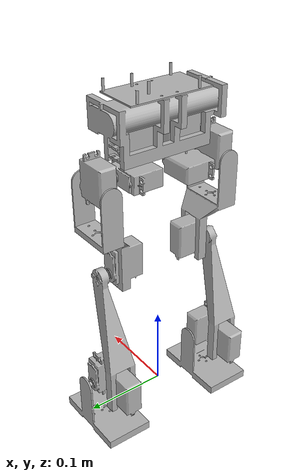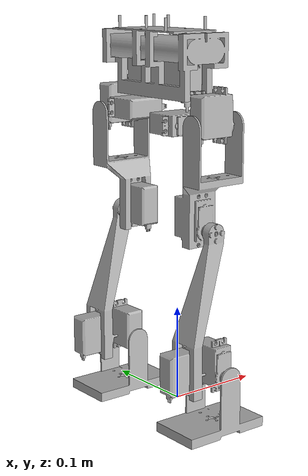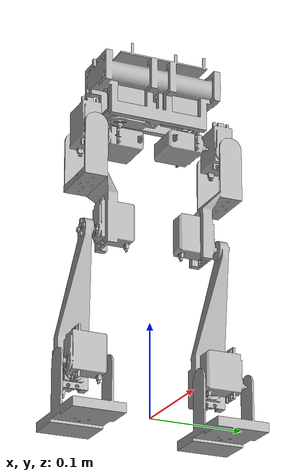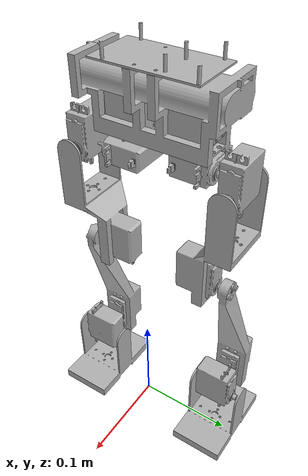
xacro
<?xml version="1.0" ?>
<robot name="URDF" xmlns:xacro="http://www.ros.org/wiki/xacro">

<xacro:include filename="$(find URDF_description)/urdf/materials.xacro" />
<xacro:include filename="$(find URDF_description)/urdf/URDF.trans" />
<xacro:include filename="$(find URDF_description)/urdf/URDF.gazebo" />
<link name="base_link">
  <inertial>
    <origin xyz="-0.011771950657531978 0.009504064144813888 0.36652745045672347" rpy="0 0 0"/>
    <mass value="1.511497628813241"/>
    <inertia ixx="0.002624" iyy="0.000685" izz="0.00252" ixy="-0.0" iyz="-1e-05" ixz="-1e-06"/>
  </inertial>
  <visual>
    <origin xyz="0 0 0" rpy="0 0 0"/>
    <geometry>
      <mesh filename="package://URDF_description/meshes/base_link.stl" scale="0.001 0.001 0.001"/>
    </geometry>
    <material name="silver"/>
  </visual>
  <collision>
    <origin xyz="0 0 0" rpy="0 0 0"/>
    <geometry>
      <mesh filename="package://URDF_description/meshes/base_link.stl" scale="0.001 0.001 0.001"/>
    </geometry>
  </collision>
</link>

<link name="l3_1">
  <inertial>
    <origin xyz="-0.0010554319034483655 -0.010177955025813722 0.0099605153071331" rpy="0 0 0"/>
    <mass value="0.2605710862815951"/>
    <inertia ixx="4.6e-05" iyy="7.1e-05" izz="4.2e-05" ixy="0.0" iyz="-0.0" ixz="1e-06"/>
  </inertial>
  <visual>
    <origin xyz="0.01125 0.056859 -0.300753" rpy="0 0 0"/>
    <geometry>
      <mesh filename="package://URDF_description/meshes/l3_1.stl" scale="0.001 0.001 0.001"/>
    </geometry>
    <material name="silver"/>
  </visual>
  <collision>
    <origin xyz="0.01125 0.056859 -0.300753" rpy="0 0 0"/>
    <geometry>
      <mesh filename="package://URDF_description/meshes/l3_1.stl" scale="0.001 0.001 0.001"/>
    </geometry>
  </collision>
</link>

<link name="r3_1">
  <inertial>
    <origin xyz="-0.0013721079730043672 0.010183257082741967 0.009960041415219167" rpy="0 0 0"/>
    <mass value="0.26058347817133687"/>
    <inertia ixx="4.6e-05" iyy="7.1e-05" izz="4.2e-05" ixy="-0.0" iyz="0.0" ixz="1e-06"/>
  </inertial>
  <visual>
    <origin xyz="0.010932 -0.07264 -0.300746" rpy="0 0 0"/>
    <geometry>
      <mesh filename="package://URDF_description/meshes/r3_1.stl" scale="0.001 0.001 0.001"/>
    </geometry>
    <material name="silver"/>
  </visual>
  <collision>
    <origin xyz="0.010932 -0.07264 -0.300746" rpy="0 0 0"/>
    <geometry>
      <mesh filename="package://URDF_description/meshes/r3_1.stl" scale="0.001 0.001 0.001"/>
    </geometry>
  </collision>
</link>

<link name="l4_1">
  <inertial>
    <origin xyz="-0.025108010465582926 0.020534482343403035 -0.07938553469074466" rpy="0 0 0"/>
    <mass value="0.4795683297989441"/>
    <inertia ixx="0.0005" iyy="0.000461" izz="0.000198" ixy="-3e-06" iyz="0.000142" ixz="6e-06"/>
  </inertial>
  <visual>
    <origin xyz="-0.015754 0.067037 -0.300753" rpy="0 0 0"/>
    <geometry>
      <mesh filename="package://URDF_description/meshes/l4_1.stl" scale="0.001 0.001 0.001"/>
    </geometry>
    <material name="silver"/>
  </visual>
  <collision>
    <origin xyz="-0.015754 0.067037 -0.300753" rpy="0 0 0"/>
    <geometry>
      <mesh filename="package://URDF_description/meshes/l4_1.stl" scale="0.001 0.001 0.001"/>
    </geometry>
  </collision>
</link>

<link name="l5_1">
  <inertial>
    <origin xyz="-0.029491082579912755 0.0039567541577458926 -0.1016008471361324" rpy="0 0 0"/>
    <mass value="0.5723786894338777"/>
    <inertia ixx="0.001158" iyy="0.001268" izz="0.00017" ixy="1e-06" iyz="2e-06" ixz="-0.000323"/>
  </inertial>
  <visual>
    <origin xyz="0.009024 0.071577 -0.195159" rpy="0 0 0"/>
    <geometry>
      <mesh filename="package://URDF_description/meshes/l5_1.stl" scale="0.001 0.001 0.001"/>
    </geometry>
    <material name="silver"/>
  </visual>
  <collision>
    <origin xyz="0.009024 0.071577 -0.195159" rpy="0 0 0"/>
    <geometry>
      <mesh filename="package://URDF_description/meshes/l5_1.stl" scale="0.001 0.001 0.001"/>
    </geometry>
  </collision>
</link>

<link name="l6_1">
  <inertial>
    <origin xyz="0.010148909868078046 0.0014454123231728566 0.009960061611517447" rpy="0 0 0"/>
    <mass value="0.260583085238151"/>
    <inertia ixx="7.1e-05" iyy="4.6e-05" izz="4.2e-05" ixy="0.0" iyz="-1e-06" ixz="0.0"/>
  </inertial>
  <visual>
    <origin xyz="0.018503 0.067568 -0.050454" rpy="0 0 0"/>
    <geometry>
      <mesh filename="package://URDF_description/meshes/l6_1.stl" scale="0.001 0.001 0.001"/>
    </geometry>
    <material name="silver"/>
  </visual>
  <collision>
    <origin xyz="0.018503 0.067568 -0.050454" rpy="0 0 0"/>
    <geometry>
      <mesh filename="package://URDF_description/meshes/l6_1.stl" scale="0.001 0.001 0.001"/>
    </geometry>
  </collision>
</link>

<link name="l7_1">
  <inertial>
    <origin xyz="-0.0038360250370360807 0.0260878632088187 -0.050533848086451186" rpy="0 0 0"/>
    <mass value="0.42535185084301863"/>
    <inertia ixx="0.000201" iyy="0.000374" izz="0.000441" ixy="-0.0" iyz="-0.0" ixz="-5e-06"/>
  </inertial>
  <visual>
    <origin xyz="0.008354 0.094498 -0.050454" rpy="0 0 0"/>
    <geometry>
      <mesh filename="package://URDF_description/meshes/l7_1.stl" scale="0.001 0.001 0.001"/>
    </geometry>
    <material name="silver"/>
  </visual>
  <collision>
    <origin xyz="0.008354 0.094498 -0.050454" rpy="0 0 0"/>
    <geometry>
      <mesh filename="package://URDF_description/meshes/l7_1.stl" scale="0.001 0.001 0.001"/>
    </geometry>
  </collision>
</link>

<link name="r4_1">
  <inertial>
    <origin xyz="-0.025086134509350884 -0.019584458432278365 -0.07938591030825276" rpy="0 0 0"/>
    <mass value="0.4795660415586759"/>
    <inertia ixx="0.0005" iyy="0.000461" izz="0.000198" ixy="3e-06" iyz="-0.000142" ixz="6e-06"/>
  </inertial>
  <visual>
    <origin xyz="-0.016072 -0.082823 -0.300746" rpy="0 0 0"/>
    <geometry>
      <mesh filename="package://URDF_description/meshes/r4_1.stl" scale="0.001 0.001 0.001"/>
    </geometry>
    <material name="silver"/>
  </visual>
  <collision>
    <origin xyz="-0.016072 -0.082823 -0.300746" rpy="0 0 0"/>
    <geometry>
      <mesh filename="package://URDF_description/meshes/r4_1.stl" scale="0.001 0.001 0.001"/>
    </geometry>
  </collision>
</link>

<link name="r5_1">
  <inertial>
    <origin xyz="-0.029491076838213486 -0.003956632577475125 -0.10160079326267875" rpy="0 0 0"/>
    <mass value="0.5723780660401575"/>
    <inertia ixx="0.001158" iyy="0.001268" izz="0.00017" ixy="-1e-06" iyz="-2e-06" ixz="-0.000323"/>
  </inertial>
  <visual>
    <origin xyz="0.008684 -0.088313 -0.195152" rpy="0 0 0"/>
    <geometry>
      <mesh filename="package://URDF_description/meshes/r5_1.stl" scale="0.001 0.001 0.001"/>
    </geometry>
    <material name="silver"/>
  </visual>
  <collision>
    <origin xyz="0.008684 -0.088313 -0.195152" rpy="0 0 0"/>
    <geometry>
      <mesh filename="package://URDF_description/meshes/r5_1.stl" scale="0.001 0.001 0.001"/>
    </geometry>
  </collision>
</link>

<link name="r6_1">
  <inertial>
    <origin xyz="0.010216801636088587 -0.0014452836669609503 0.009959962708194117" rpy="0 0 0"/>
    <mass value="0.26058568857338693"/>
    <inertia ixx="7.1e-05" iyy="4.6e-05" izz="4.2e-05" ixy="-0.0" iyz="1e-06" ixz="0.0"/>
  </inertial>
  <visual>
    <origin xyz="0.018163 -0.084304 -0.050447" rpy="0 0 0"/>
    <geometry>
      <mesh filename="package://URDF_description/meshes/r6_1.stl" scale="0.001 0.001 0.001"/>
    </geometry>
    <material name="silver"/>
  </visual>
  <collision>
    <origin xyz="0.018163 -0.084304 -0.050447" rpy="0 0 0"/>
    <geometry>
      <mesh filename="package://URDF_description/meshes/r6_1.stl" scale="0.001 0.001 0.001"/>
    </geometry>
  </collision>
</link>

<link name="r7_1">
  <inertial>
    <origin xyz="-0.003836011886673152 -0.025999620351597932 -0.050533600876661144" rpy="0 0 0"/>
    <mass value="0.42535393165731183"/>
    <inertia ixx="0.000201" iyy="0.000374" izz="0.000441" ixy="0.0" iyz="0.0" ixz="-5e-06"/>
  </inertial>
  <visual>
    <origin xyz="0.007946 -0.111234 -0.050447" rpy="0 0 0"/>
    <geometry>
      <mesh filename="package://URDF_description/meshes/r7_1.stl" scale="0.001 0.001 0.001"/>
    </geometry>
    <material name="silver"/>
  </visual>
  <collision>
    <origin xyz="0.007946 -0.111234 -0.050447" rpy="0 0 0"/>
    <geometry>
      <mesh filename="package://URDF_description/meshes/r7_1.stl" scale="0.001 0.001 0.001"/>
    </geometry>
  </collision>
</link>

<link name="r1_1">
  <inertial>
    <origin xyz="0.0004996878831269973 0.02734500634448242 0.00896780014474241" rpy="0 0 0"/>
    <mass value="0.260645951134301"/>
    <inertia ixx="7.1e-05" iyy="4.2e-05" izz="4.6e-05" ixy="0.0" iyz="1e-06" ixz="0.0"/>
  </inertial>
  <visual>
    <origin xyz="0.011804 -0.008368 -0.332395" rpy="0 0 0"/>
    <geometry>
      <mesh filename="package://URDF_description/meshes/r1_1.stl" scale="0.001 0.001 0.001"/>
    </geometry>
    <material name="silver"/>
  </visual>
  <collision>
    <origin xyz="0.011804 -0.008368 -0.332395" rpy="0 0 0"/>
    <geometry>
      <mesh filename="package://URDF_description/meshes/r1_1.stl" scale="0.001 0.001 0.001"/>
    </geometry>
  </collision>
</link>

<link name="l1_1">
  <inertial>
    <origin xyz="0.0001816438125570169 -0.0273436447861984 0.008967326406254417" rpy="0 0 0"/>
    <mass value="0.260658112795213"/>
    <inertia ixx="7.1e-05" iyy="4.2e-05" izz="4.6e-05" ixy="-0.0" iyz="-1e-06" ixz="0.0"/>
  </inertial>
  <visual>
    <origin xyz="0.011804 -0.008368 -0.332395" rpy="0 0 0"/>
    <geometry>
      <mesh filename="package://URDF_description/meshes/l1_1.stl" scale="0.001 0.001 0.001"/>
    </geometry>
    <material name="silver"/>
  </visual>
  <collision>
    <origin xyz="0.011804 -0.008368 -0.332395" rpy="0 0 0"/>
    <geometry>
      <mesh filename="package://URDF_description/meshes/l1_1.stl" scale="0.001 0.001 0.001"/>
    </geometry>
  </collision>
</link>

<link name="l2_1">
  <inertial>
    <origin xyz="-0.009584482225170093 0.002892011357412988 -0.010242130854528853" rpy="0 0 0"/>
    <mass value="0.2606766909017712"/>
    <inertia ixx="4.2e-05" iyy="4.6e-05" izz="7.1e-05" ixy="1e-06" iyz="-0.0" ixz="0.0"/>
  </inertial>
  <visual>
    <origin xyz="0.011622 0.028932 -0.310995" rpy="0 0 0"/>
    <geometry>
      <mesh filename="package://URDF_description/meshes/l2_1.stl" scale="0.001 0.001 0.001"/>
    </geometry>
    <material name="silver"/>
  </visual>
  <collision>
    <origin xyz="0.011622 0.028932 -0.310995" rpy="0 0 0"/>
    <geometry>
      <mesh filename="package://URDF_description/meshes/l2_1.stl" scale="0.001 0.001 0.001"/>
    </geometry>
  </collision>
</link>

<link name="r2_1">
  <inertial>
    <origin xyz="-0.00958582114085108 -0.0028961550072031106 -0.010249054751743758" rpy="0 0 0"/>
    <mass value="0.2606418768017664"/>
    <inertia ixx="4.2e-05" iyy="4.6e-05" izz="7.1e-05" ixy="-1e-06" iyz="0.0" ixz="0.0"/>
  </inertial>
  <visual>
    <origin xyz="0.011304 -0.045668 -0.310995" rpy="0 0 0"/>
    <geometry>
      <mesh filename="package://URDF_description/meshes/r2_1.stl" scale="0.001 0.001 0.001"/>
    </geometry>
    <material name="silver"/>
  </visual>
  <collision>
    <origin xyz="0.011304 -0.045668 -0.310995" rpy="0 0 0"/>
    <geometry>
      <mesh filename="package://URDF_description/meshes/r2_1.stl" scale="0.001 0.001 0.001"/>
    </geometry>
  </collision>
</link>

<joint name="Revolute 46" type="continuous">
  <origin xyz="0.000372 -0.027927 -0.010242" rpy="0 0 0"/>
  <parent link="l2_1"/>
  <child link="l3_1"/>
  <axis xyz="-0.0 -1.0 -0.0"/>
</joint>

<joint name="Revolute 54" type="continuous">
  <origin xyz="0.000372 0.026972 -0.010249" rpy="0 0 0"/>
  <parent link="r2_1"/>
  <child link="r3_1"/>
  <axis xyz="-0.0 1.0 0.0"/>
</joint>

<joint name="Revolute 66" type="continuous">
  <origin xyz="0.027004 -0.010178 0.0" rpy="0 0 0"/>
  <parent link="l3_1"/>
  <child link="l4_1"/>
  <axis xyz="1.0 0.0 -0.0"/>
</joint>

<joint name="Revolute 67" type="continuous">
  <origin xyz="-0.024778 -0.00454 -0.105594" rpy="0 0 0"/>
  <parent link="l4_1"/>
  <child link="l5_1"/>
  <axis xyz="-0.0 -1.0 -0.0"/>
</joint>

<joint name="Revolute 68" type="continuous">
  <origin xyz="-0.009479 0.004009 -0.144705" rpy="0 0 0"/>
  <parent link="l5_1"/>
  <child link="l6_1"/>
  <axis xyz="1.0 0.0 0.0"/>
</joint>

<joint name="Revolute 69" type="continuous">
  <origin xyz="0.010149 -0.02693 0.0" rpy="0 0 0"/>
  <parent link="l6_1"/>
  <child link="l7_1"/>
  <axis xyz="0.0 -1.0 -0.0"/>
</joint>

<joint name="Revolute 70" type="continuous">
  <origin xyz="0.027004 0.010183 0.0" rpy="0 0 0"/>
  <parent link="r3_1"/>
  <child link="r4_1"/>
  <axis xyz="1.0 0.0 -0.0"/>
</joint>

<joint name="Revolute 71" type="continuous">
  <origin xyz="-0.024756 0.00549 -0.105594" rpy="0 0 0"/>
  <parent link="r4_1"/>
  <child link="r5_1"/>
  <axis xyz="-0.0 1.0 0.0"/>
</joint>

<joint name="Revolute 72" type="continuous">
  <origin xyz="-0.009479 -0.004009 -0.144705" rpy="0 0 0"/>
  <parent link="r5_1"/>
  <child link="r6_1"/>
  <axis xyz="1.0 0.0 -0.0"/>
</joint>

<joint name="Revolute 73" type="continuous">
  <origin xyz="0.010217 0.02693 0.0" rpy="0 0 0"/>
  <parent link="r6_1"/>
  <child link="r7_1"/>
  <axis xyz="-0.0 1.0 0.0"/>
</joint>

<joint name="Revolute 90" type="continuous">
  <origin xyz="-0.011804 0.008368 0.332395" rpy="0 0 0"/>
  <parent link="base_link"/>
  <child link="r1_1"/>
  <axis xyz="0.0 -0.0 1.0"/>
</joint>

<joint name="Revolute 91" type="continuous">
  <origin xyz="-0.011804 0.008368 0.332395" rpy="0 0 0"/>
  <parent link="base_link"/>
  <child link="l1_1"/>
  <axis xyz="0.0 -0.0 1.0"/>
</joint>

<joint name="Revolute 92" type="continuous">
  <origin xyz="0.000182 -0.0373 -0.0214" rpy="0 0 0"/>
  <parent link="l1_1"/>
  <child link="l2_1"/>
  <axis xyz="-0.0 0.0 -1.0"/>
</joint>

<joint name="Revolute 93" type="continuous">
  <origin xyz="0.0005 0.0373 -0.0214" rpy="0 0 0"/>
  <parent link="r1_1"/>
  <child link="r2_1"/>
  <axis xyz="-0.0 0.0 -1.0"/>
</joint>

</robot>

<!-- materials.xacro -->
<robot name="URDF" xmlns:xacro="http://www.ros.org/wiki/xacro" >

<material name="silver">
  <color rgba="0.700 0.700 0.700 1.000"/>
</material>

</robot>

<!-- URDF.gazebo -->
<robot name="URDF" xmlns:xacro="http://www.ros.org/wiki/xacro" >

<xacro:property name="body_color" value="Gazebo/Silver" />

<gazebo>
  <plugin name="control" filename="libgazebo_ros_control.so"/>
</gazebo>
<gazebo reference="base_link">
  <material>${body_color}</material>
  <mu1>0.2</mu1>
  <mu2>0.2</mu2>
  <selfCollide>true</selfCollide>
  <gravity>true</gravity>
</gazebo>

<gazebo reference="l3_1">
  <material>${body_color}</material>
  <mu1>0.2</mu1>
  <mu2>0.2</mu2>
  <selfCollide>true</selfCollide>
</gazebo>

<gazebo reference="r3_1">
  <material>${body_color}</material>
  <mu1>0.2</mu1>
  <mu2>0.2</mu2>
  <selfCollide>true</selfCollide>
</gazebo>

<gazebo reference="l4_1">
  <material>${body_color}</material>
  <mu1>0.2</mu1>
  <mu2>0.2</mu2>
  <selfCollide>true</selfCollide>
</gazebo>

<gazebo reference="l5_1">
  <material>${body_color}</material>
  <mu1>0.2</mu1>
  <mu2>0.2</mu2>
  <selfCollide>true</selfCollide>
</gazebo>

<gazebo reference="l6_1">
  <material>${body_color}</material>
  <mu1>0.2</mu1>
  <mu2>0.2</mu2>
  <selfCollide>true</selfCollide>
</gazebo>

<gazebo reference="l7_1">
  <material>${body_color}</material>
  <mu1>0.2</mu1>
  <mu2>0.2</mu2>
  <selfCollide>true</selfCollide>
</gazebo>

<gazebo reference="r4_1">
  <material>${body_color}</material>
  <mu1>0.2</mu1>
  <mu2>0.2</mu2>
  <selfCollide>true</selfCollide>
</gazebo>

<gazebo reference="r5_1">
  <material>${body_color}</material>
  <mu1>0.2</mu1>
  <mu2>0.2</mu2>
  <selfCollide>true</selfCollide>
</gazebo>

<gazebo reference="r6_1">
  <material>${body_color}</material>
  <mu1>0.2</mu1>
  <mu2>0.2</mu2>
  <selfCollide>true</selfCollide>
</gazebo>

<gazebo reference="r7_1">
  <material>${body_color}</material>
  <mu1>0.2</mu1>
  <mu2>0.2</mu2>
  <selfCollide>true</selfCollide>
</gazebo>

<gazebo reference="r1_1">
  <material>${body_color}</material>
  <mu1>0.2</mu1>
  <mu2>0.2</mu2>
  <selfCollide>true</selfCollide>
</gazebo>

<gazebo reference="l1_1">
  <material>${body_color}</material>
  <mu1>0.2</mu1>
  <mu2>0.2</mu2>
  <selfCollide>true</selfCollide>
</gazebo>

<gazebo reference="l2_1">
  <material>${body_color}</material>
  <mu1>0.2</mu1>
  <mu2>0.2</mu2>
  <selfCollide>true</selfCollide>
</gazebo>

<gazebo reference="r2_1">
  <material>${body_color}</material>
  <mu1>0.2</mu1>
  <mu2>0.2</mu2>
  <selfCollide>true</selfCollide>
</gazebo>

</robot>
